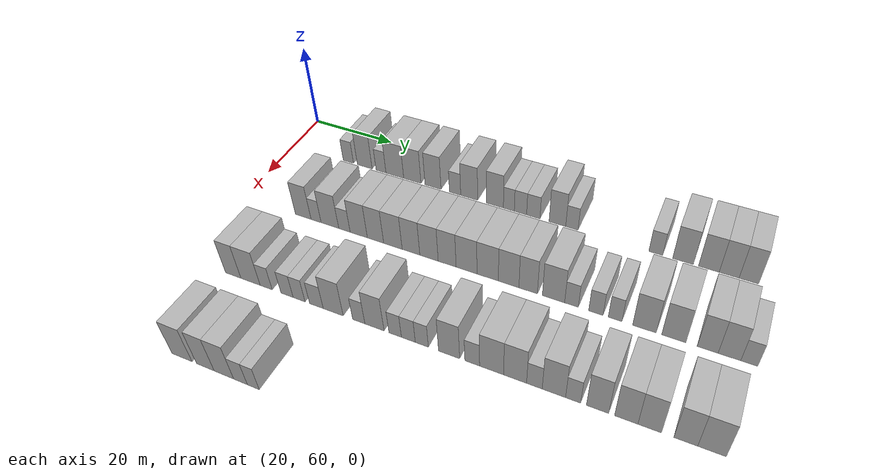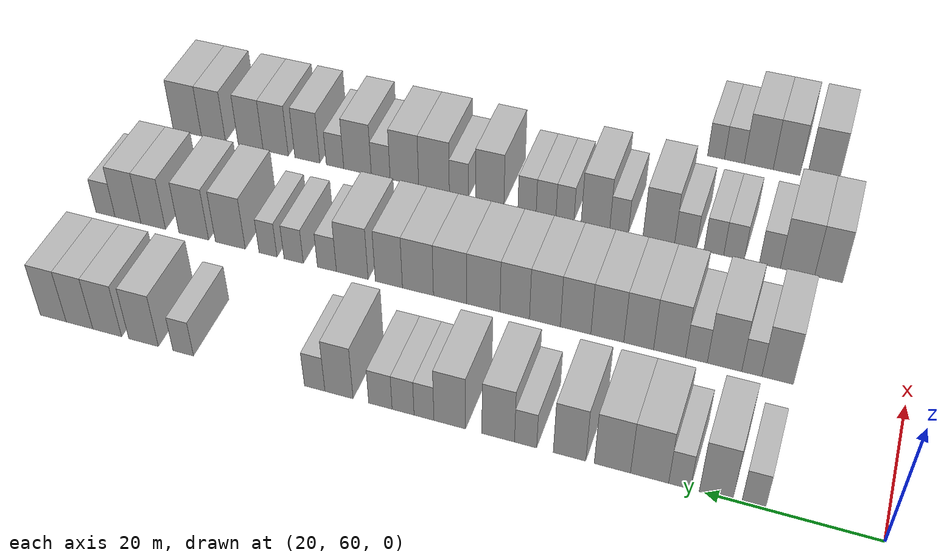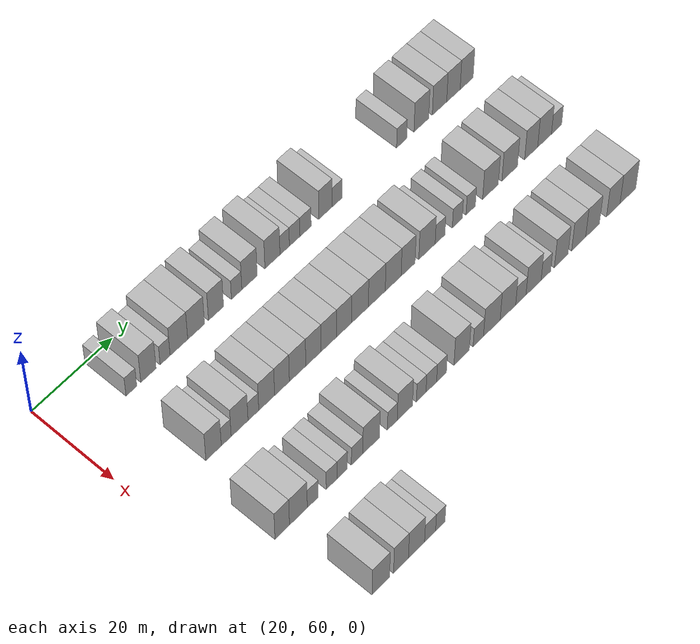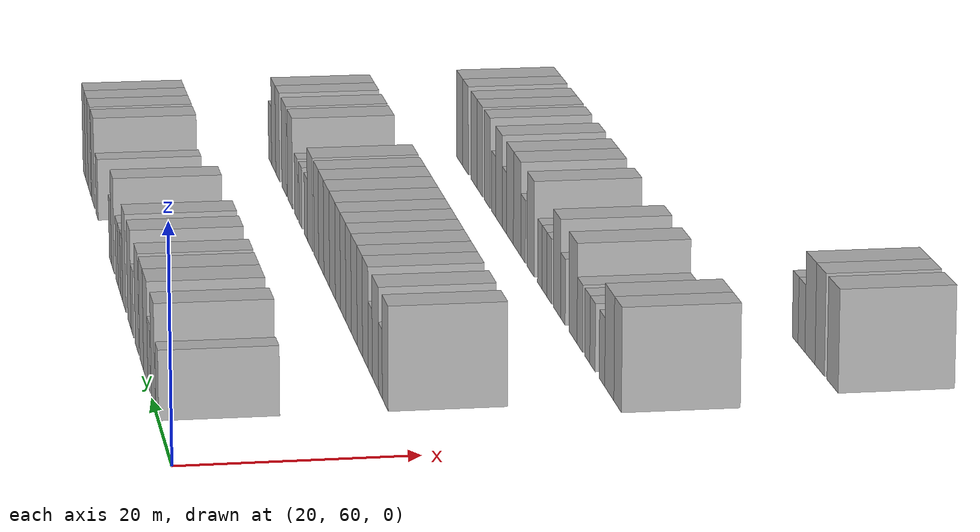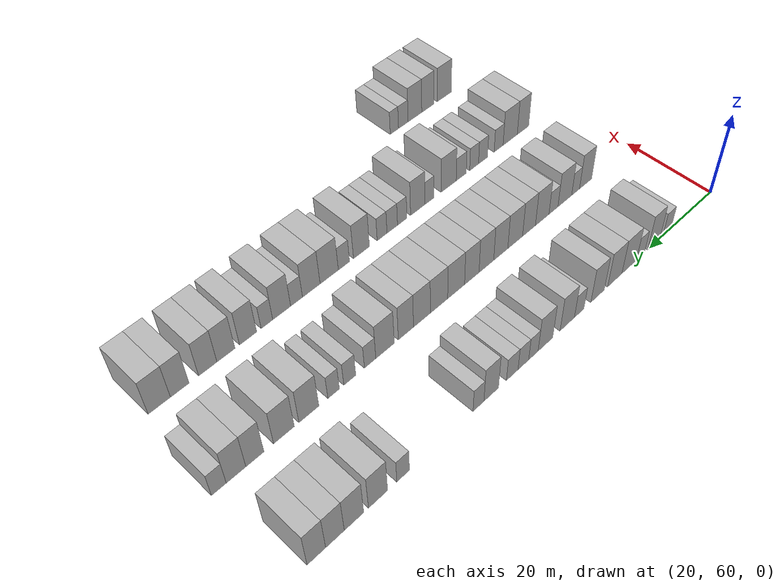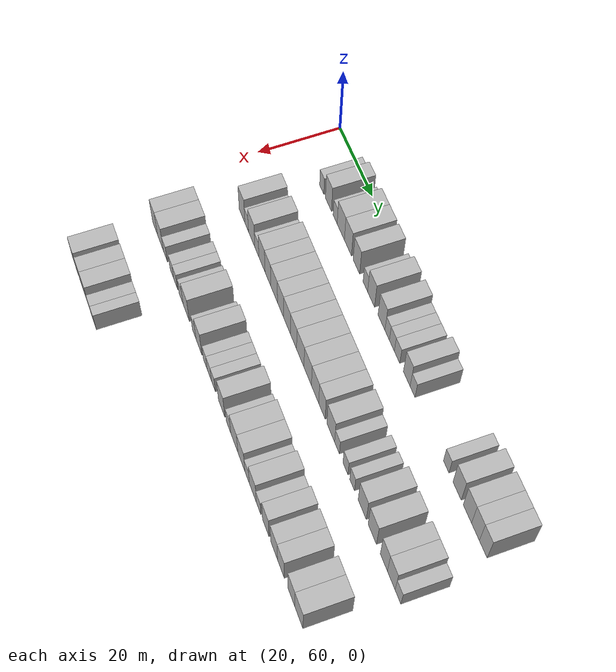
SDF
<sdf version="1.6">
 <world name="default">
  <model name="building_107">
   <static>1</static>
   <pose>25.0000 74.5199 0 0.000000 0.000000 0.000000</pose>
   <link name="link">
    <pose>0 0 3.00 0 0 0</pose>
    <collision name="collision"><geometry><box><size>10.0000 2.6778 6.0000</size></box></geometry></collision>
    <visual name="visual">
     <cast_shadows>0</cast_shadows>
     <geometry><box><size>10.0000 2.6778 6.0000</size></box></geometry>
     <material>
      <script>
       <uri>model://HANNAS_wall/materials/scripts</uri>
       <uri>model://HANNAS_wall/materials/textures</uri>
       <name>vrc/HANNAS_wall</name>
      </script>
     </material>
    </visual>
   </link>
  </model>
  <model name="building_108">
   <static>1</static>
   <pose>25.0000 78.7645 0 0.000000 0.000000 0.000000</pose>
   <link name="link">
    <pose>0 0 4.50 0 0 0</pose>
    <collision name="collision"><geometry><box><size>10.0000 3.8114 9.0000</size></box></geometry></collision>
    <visual name="visual">
     <cast_shadows>0</cast_shadows>
     <geometry><box><size>10.0000 3.8114 9.0000</size></box></geometry>
     <material>
      <script>
       <uri>model://HANNAS_wall/materials/scripts</uri>
       <uri>model://HANNAS_wall/materials/textures</uri>
       <name>vrc/HANNAS_wall</name>
      </script>
     </material>
    </visual>
   </link>
  </model>
  <model name="building_109">
   <static>1</static>
   <pose>25.0000 82.9263 0 0.000000 0.000000 0.000000</pose>
   <link name="link">
    <pose>0 0 3.00 0 0 0</pose>
    <collision name="collision"><geometry><box><size>10.0000 2.5121 6.0000</size></box></geometry></collision>
    <visual name="visual">
     <cast_shadows>0</cast_shadows>
     <geometry><box><size>10.0000 2.5121 6.0000</size></box></geometry>
     <material>
      <script>
       <uri>model://HANNAS_wall/materials/scripts</uri>
       <uri>model://HANNAS_wall/materials/textures</uri>
       <name>vrc/HANNAS_wall</name>
      </script>
     </material>
    </visual>
   </link>
  </model>
  <model name="building_110">
   <static>1</static>
   <pose>25.0000 86.4026 0 0.000000 0.000000 0.000000</pose>
   <link name="link">
    <pose>0 0 4.50 0 0 0</pose>
    <collision name="collision"><geometry><box><size>10.0000 4.4404 9.0000</size></box></geometry></collision>
    <visual name="visual">
     <cast_shadows>0</cast_shadows>
     <geometry><box><size>10.0000 4.4404 9.0000</size></box></geometry>
     <material>
      <script>
       <uri>model://HANNAS_wall/materials/scripts</uri>
       <uri>model://HANNAS_wall/materials/textures</uri>
       <name>vrc/HANNAS_wall</name>
      </script>
     </material>
    </visual>
   </link>
  </model>
  <model name="building_111">
   <static>1</static>
   <pose>25.0000 90.7559 0 0.000000 0.000000 0.000000</pose>
   <link name="link">
    <pose>0 0 4.50 0 0 0</pose>
    <collision name="collision"><geometry><box><size>10.0000 4.2663 9.0000</size></box></geometry></collision>
    <visual name="visual">
     <cast_shadows>0</cast_shadows>
     <geometry><box><size>10.0000 4.2663 9.0000</size></box></geometry>
     <material>
      <script>
       <uri>model://HANNAS_wall/materials/scripts</uri>
       <uri>model://HANNAS_wall/materials/textures</uri>
       <name>vrc/HANNAS_wall</name>
      </script>
     </material>
    </visual>
   </link>
  </model>
  <model name="building_112">
   <static>1</static>
   <pose>25.0000 95.8309 0 0.000000 0.000000 0.000000</pose>
   <link name="link">
    <pose>0 0 4.50 0 0 0</pose>
    <collision name="collision"><geometry><box><size>10.0000 3.8835 9.0000</size></box></geometry></collision>
    <visual name="visual">
     <cast_shadows>0</cast_shadows>
     <geometry><box><size>10.0000 3.8835 9.0000</size></box></geometry>
     <material>
      <script>
       <uri>model://HANNAS_wall/materials/scripts</uri>
       <uri>model://HANNAS_wall/materials/textures</uri>
       <name>vrc/HANNAS_wall</name>
      </script>
     </material>
    </visual>
   </link>
  </model>
  <model name="building_113">
   <static>1</static>
   <pose>25.0000 101.1146 0 0.000000 0.000000 0.000000</pose>
   <link name="link">
    <pose>0 0 3.00 0 0 0</pose>
    <collision name="collision"><geometry><box><size>10.0000 2.6839 6.0000</size></box></geometry></collision>
    <visual name="visual">
     <cast_shadows>0</cast_shadows>
     <geometry><box><size>10.0000 2.6839 6.0000</size></box></geometry>
     <material>
      <script>
       <uri>model://HANNAS_wall/materials/scripts</uri>
       <uri>model://HANNAS_wall/materials/textures</uri>
       <name>vrc/HANNAS_wall</name>
      </script>
     </material>
    </visual>
   </link>
  </model>
  <model name="building_114">
   <static>1</static>
   <pose>25.0000 104.4539 0 0.000000 0.000000 0.000000</pose>
   <link name="link">
    <pose>0 0 4.50 0 0 0</pose>
    <collision name="collision"><geometry><box><size>10.0000 3.9947 9.0000</size></box></geometry></collision>
    <visual name="visual">
     <cast_shadows>0</cast_shadows>
     <geometry><box><size>10.0000 3.9947 9.0000</size></box></geometry>
     <material>
      <script>
       <uri>model://HANNAS_wall/materials/scripts</uri>
       <uri>model://HANNAS_wall/materials/textures</uri>
       <name>vrc/HANNAS_wall</name>
      </script>
     </material>
    </visual>
   </link>
  </model>
  <model name="building_115">
   <static>1</static>
   <pose>25.0000 110.4219 0 0.000000 0.000000 0.000000</pose>
   <link name="link">
    <pose>0 0 4.50 0 0 0</pose>
    <collision name="collision"><geometry><box><size>10.0000 3.9413 9.0000</size></box></geometry></collision>
    <visual name="visual">
     <cast_shadows>0</cast_shadows>
     <geometry><box><size>10.0000 3.9413 9.0000</size></box></geometry>
     <material>
      <script>
       <uri>model://HANNAS_wall/materials/scripts</uri>
       <uri>model://HANNAS_wall/materials/textures</uri>
       <name>vrc/HANNAS_wall</name>
      </script>
     </material>
    </visual>
   </link>
  </model>
  <model name="building_116">
   <static>1</static>
   <pose>25.0000 113.6374 0 0.000000 0.000000 0.000000</pose>
   <link name="link">
    <pose>0 0 3.00 0 0 0</pose>
    <collision name="collision"><geometry><box><size>10.0000 2.4896 6.0000</size></box></geometry></collision>
    <visual name="visual">
     <cast_shadows>0</cast_shadows>
     <geometry><box><size>10.0000 2.4896 6.0000</size></box></geometry>
     <material>
      <script>
       <uri>model://HANNAS_wall/materials/scripts</uri>
       <uri>model://HANNAS_wall/materials/textures</uri>
       <name>vrc/HANNAS_wall</name>
      </script>
     </material>
    </visual>
   </link>
  </model>
  <model name="building_117">
   <static>1</static>
   <pose>25.0000 116.2682 0 0.000000 0.000000 0.000000</pose>
   <link name="link">
    <pose>0 0 3.00 0 0 0</pose>
    <collision name="collision"><geometry><box><size>10.0000 2.7721 6.0000</size></box></geometry></collision>
    <visual name="visual">
     <cast_shadows>0</cast_shadows>
     <geometry><box><size>10.0000 2.7721 6.0000</size></box></geometry>
     <material>
      <script>
       <uri>model://HANNAS_wall/materials/scripts</uri>
       <uri>model://HANNAS_wall/materials/textures</uri>
       <name>vrc/HANNAS_wall</name>
      </script>
     </material>
    </visual>
   </link>
  </model>
  <model name="building_118">
   <static>1</static>
   <pose>25.0000 119.1436 0 0.000000 0.000000 0.000000</pose>
   <link name="link">
    <pose>0 0 3.00 0 0 0</pose>
    <collision name="collision"><geometry><box><size>10.0000 2.9788 6.0000</size></box></geometry></collision>
    <visual name="visual">
     <cast_shadows>0</cast_shadows>
     <geometry><box><size>10.0000 2.9788 6.0000</size></box></geometry>
     <material>
      <script>
       <uri>model://HANNAS_wall/materials/scripts</uri>
       <uri>model://HANNAS_wall/materials/textures</uri>
       <name>vrc/HANNAS_wall</name>
      </script>
     </material>
    </visual>
   </link>
  </model>
  <model name="building_119">
   <static>1</static>
   <pose>25.0000 124.4514 0 0.000000 0.000000 0.000000</pose>
   <link name="link">
    <pose>0 0 4.50 0 0 0</pose>
    <collision name="collision"><geometry><box><size>10.0000 3.6368 9.0000</size></box></geometry></collision>
    <visual name="visual">
     <cast_shadows>0</cast_shadows>
     <geometry><box><size>10.0000 3.6368 9.0000</size></box></geometry>
     <material>
      <script>
       <uri>model://HANNAS_wall/materials/scripts</uri>
       <uri>model://HANNAS_wall/materials/textures</uri>
       <name>vrc/HANNAS_wall</name>
      </script>
     </material>
    </visual>
   </link>
  </model>
  <model name="building_120">
   <static>1</static>
   <pose>25.0000 127.6009 0 0.000000 0.000000 0.000000</pose>
   <link name="link">
    <pose>0 0 3.00 0 0 0</pose>
    <collision name="collision"><geometry><box><size>10.0000 2.6622 6.0000</size></box></geometry></collision>
    <visual name="visual">
     <cast_shadows>0</cast_shadows>
     <geometry><box><size>10.0000 2.6622 6.0000</size></box></geometry>
     <material>
      <script>
       <uri>model://HANNAS_wall/materials/scripts</uri>
       <uri>model://HANNAS_wall/materials/textures</uri>
       <name>vrc/HANNAS_wall</name>
      </script>
     </material>
    </visual>
   </link>
  </model>
  <model name="building_121">
   <static>1</static>
   <pose>25.0000 145.1312 0 0.000000 0.000000 0.000000</pose>
   <link name="link">
    <pose>0 0 3.00 0 0 0</pose>
    <collision name="collision"><geometry><box><size>10.0000 2.7995 6.0000</size></box></geometry></collision>
    <visual name="visual">
     <cast_shadows>0</cast_shadows>
     <geometry><box><size>10.0000 2.7995 6.0000</size></box></geometry>
     <material>
      <script>
       <uri>model://HANNAS_wall/materials/scripts</uri>
       <uri>model://HANNAS_wall/materials/textures</uri>
       <name>vrc/HANNAS_wall</name>
      </script>
     </material>
    </visual>
   </link>
  </model>
  <model name="building_122">
   <static>1</static>
   <pose>25.0000 150.5776 0 0.000000 0.000000 0.000000</pose>
   <link name="link">
    <pose>0 0 4.50 0 0 0</pose>
    <collision name="collision"><geometry><box><size>10.0000 4.0933 9.0000</size></box></geometry></collision>
    <visual name="visual">
     <cast_shadows>0</cast_shadows>
     <geometry><box><size>10.0000 4.0933 9.0000</size></box></geometry>
     <material>
      <script>
       <uri>model://HANNAS_wall/materials/scripts</uri>
       <uri>model://HANNAS_wall/materials/textures</uri>
       <name>vrc/HANNAS_wall</name>
      </script>
     </material>
    </visual>
   </link>
  </model>
  <model name="building_123">
   <static>1</static>
   <pose>25.0000 155.6396 0 0.000000 0.000000 0.000000</pose>
   <link name="link">
    <pose>0 0 4.50 0 0 0</pose>
    <collision name="collision"><geometry><box><size>10.0000 4.0307 9.0000</size></box></geometry></collision>
    <visual name="visual">
     <cast_shadows>0</cast_shadows>
     <geometry><box><size>10.0000 4.0307 9.0000</size></box></geometry>
     <material>
      <script>
       <uri>model://HANNAS_wall/materials/scripts</uri>
       <uri>model://HANNAS_wall/materials/textures</uri>
       <name>vrc/HANNAS_wall</name>
      </script>
     </material>
    </visual>
   </link>
  </model>
  <model name="building_124">
   <static>1</static>
   <pose>25.0000 159.5429 0 0.000000 0.000000 0.000000</pose>
   <link name="link">
    <pose>0 0 4.50 0 0 0</pose>
    <collision name="collision"><geometry><box><size>10.0000 3.7759 9.0000</size></box></geometry></collision>
    <visual name="visual">
     <cast_shadows>0</cast_shadows>
     <geometry><box><size>10.0000 3.7759 9.0000</size></box></geometry>
     <material>
      <script>
       <uri>model://HANNAS_wall/materials/scripts</uri>
       <uri>model://HANNAS_wall/materials/textures</uri>
       <name>vrc/HANNAS_wall</name>
      </script>
     </material>
    </visual>
   </link>
  </model>
  <model name="building_125">
   <static>1</static>
   <pose>25.0000 163.2745 0 0.000000 0.000000 0.000000</pose>
   <link name="link">
    <pose>0 0 4.50 0 0 0</pose>
    <collision name="collision"><geometry><box><size>10.0000 3.6872 9.0000</size></box></geometry></collision>
    <visual name="visual">
     <cast_shadows>0</cast_shadows>
     <geometry><box><size>10.0000 3.6872 9.0000</size></box></geometry>
     <material>
      <script>
       <uri>model://HANNAS_wall/materials/scripts</uri>
       <uri>model://HANNAS_wall/materials/textures</uri>
       <name>vrc/HANNAS_wall</name>
      </script>
     </material>
    </visual>
   </link>
  </model>
  <model name="building_272">
   <static>1</static>
   <pose>44.0000 75.1054 0 0.000000 0.000000 0.000000</pose>
   <link name="link">
    <pose>0 0 4.50 0 0 0</pose>
    <collision name="collision"><geometry><box><size>10.0000 3.8410 9.0000</size></box></geometry></collision>
    <visual name="visual">
     <cast_shadows>0</cast_shadows>
     <geometry><box><size>10.0000 3.8410 9.0000</size></box></geometry>
     <material>
      <script>
       <uri>model://HANNAS_wall/materials/scripts</uri>
       <uri>model://HANNAS_wall/materials/textures</uri>
       <name>vrc/HANNAS_wall</name>
      </script>
     </material>
    </visual>
   </link>
  </model>
  <model name="building_273">
   <static>1</static>
   <pose>44.0000 78.2526 0 0.000000 0.000000 0.000000</pose>
   <link name="link">
    <pose>0 0 3.00 0 0 0</pose>
    <collision name="collision"><geometry><box><size>10.0000 2.4534 6.0000</size></box></geometry></collision>
    <visual name="visual">
     <cast_shadows>0</cast_shadows>
     <geometry><box><size>10.0000 2.4534 6.0000</size></box></geometry>
     <material>
      <script>
       <uri>model://HANNAS_wall/materials/scripts</uri>
       <uri>model://HANNAS_wall/materials/textures</uri>
       <name>vrc/HANNAS_wall</name>
      </script>
     </material>
    </visual>
   </link>
  </model>
  <model name="building_274">
   <static>1</static>
   <pose>44.0000 81.5974 0 0.000000 0.000000 0.000000</pose>
   <link name="link">
    <pose>0 0 4.50 0 0 0</pose>
    <collision name="collision"><geometry><box><size>10.0000 4.2361 9.0000</size></box></geometry></collision>
    <visual name="visual">
     <cast_shadows>0</cast_shadows>
     <geometry><box><size>10.0000 4.2361 9.0000</size></box></geometry>
     <material>
      <script>
       <uri>model://HANNAS_wall/materials/scripts</uri>
       <uri>model://HANNAS_wall/materials/textures</uri>
       <name>vrc/HANNAS_wall</name>
      </script>
     </material>
    </visual>
   </link>
  </model>
  <model name="building_275">
   <static>1</static>
   <pose>44.0000 85.0701 0 0.000000 0.000000 0.000000</pose>
   <link name="link">
    <pose>0 0 3.00 0 0 0</pose>
    <collision name="collision"><geometry><box><size>10.0000 2.7095 6.0000</size></box></geometry></collision>
    <visual name="visual">
     <cast_shadows>0</cast_shadows>
     <geometry><box><size>10.0000 2.7095 6.0000</size></box></geometry>
     <material>
      <script>
       <uri>model://HANNAS_wall/materials/scripts</uri>
       <uri>model://HANNAS_wall/materials/textures</uri>
       <name>vrc/HANNAS_wall</name>
      </script>
     </material>
    </visual>
   </link>
  </model>
  <model name="building_276">
   <static>1</static>
   <pose>44.0000 88.4335 0 0.000000 0.000000 0.000000</pose>
   <link name="link">
    <pose>0 0 4.50 0 0 0</pose>
    <collision name="collision"><geometry><box><size>10.0000 4.0171 9.0000</size></box></geometry></collision>
    <visual name="visual">
     <cast_shadows>0</cast_shadows>
     <geometry><box><size>10.0000 4.0171 9.0000</size></box></geometry>
     <material>
      <script>
       <uri>model://HANNAS_wall/materials/scripts</uri>
       <uri>model://HANNAS_wall/materials/textures</uri>
       <name>vrc/HANNAS_wall</name>
      </script>
     </material>
    </visual>
   </link>
  </model>
  <model name="building_277">
   <static>1</static>
   <pose>44.0000 92.3285 0 0.000000 0.000000 0.000000</pose>
   <link name="link">
    <pose>0 0 4.50 0 0 0</pose>
    <collision name="collision"><geometry><box><size>10.0000 3.7730 9.0000</size></box></geometry></collision>
    <visual name="visual">
     <cast_shadows>0</cast_shadows>
     <geometry><box><size>10.0000 3.7730 9.0000</size></box></geometry>
     <material>
      <script>
       <uri>model://HANNAS_wall/materials/scripts</uri>
       <uri>model://HANNAS_wall/materials/textures</uri>
       <name>vrc/HANNAS_wall</name>
      </script>
     </material>
    </visual>
   </link>
  </model>
  <model name="building_278">
   <static>1</static>
   <pose>44.0000 96.3219 0 0.000000 0.000000 0.000000</pose>
   <link name="link">
    <pose>0 0 4.50 0 0 0</pose>
    <collision name="collision"><geometry><box><size>10.0000 4.2138 9.0000</size></box></geometry></collision>
    <visual name="visual">
     <cast_shadows>0</cast_shadows>
     <geometry><box><size>10.0000 4.2138 9.0000</size></box></geometry>
     <material>
      <script>
       <uri>model://HANNAS_wall/materials/scripts</uri>
       <uri>model://HANNAS_wall/materials/textures</uri>
       <name>vrc/HANNAS_wall</name>
      </script>
     </material>
    </visual>
   </link>
  </model>
  <model name="building_279">
   <static>1</static>
   <pose>44.0000 100.4044 0 0.000000 0.000000 0.000000</pose>
   <link name="link">
    <pose>0 0 4.50 0 0 0</pose>
    <collision name="collision"><geometry><box><size>10.0000 3.9511 9.0000</size></box></geometry></collision>
    <visual name="visual">
     <cast_shadows>0</cast_shadows>
     <geometry><box><size>10.0000 3.9511 9.0000</size></box></geometry>
     <material>
      <script>
       <uri>model://HANNAS_wall/materials/scripts</uri>
       <uri>model://HANNAS_wall/materials/textures</uri>
       <name>vrc/HANNAS_wall</name>
      </script>
     </material>
    </visual>
   </link>
  </model>
  <model name="building_280">
   <static>1</static>
   <pose>44.0000 104.4005 0 0.000000 0.000000 0.000000</pose>
   <link name="link">
    <pose>0 0 4.50 0 0 0</pose>
    <collision name="collision"><geometry><box><size>10.0000 4.0412 9.0000</size></box></geometry></collision>
    <visual name="visual">
     <cast_shadows>0</cast_shadows>
     <geometry><box><size>10.0000 4.0412 9.0000</size></box></geometry>
     <material>
      <script>
       <uri>model://HANNAS_wall/materials/scripts</uri>
       <uri>model://HANNAS_wall/materials/textures</uri>
       <name>vrc/HANNAS_wall</name>
      </script>
     </material>
    </visual>
   </link>
  </model>
  <model name="building_281">
   <static>1</static>
   <pose>44.0000 108.3671 0 0.000000 0.000000 0.000000</pose>
   <link name="link">
    <pose>0 0 4.50 0 0 0</pose>
    <collision name="collision"><geometry><box><size>10.0000 3.8921 9.0000</size></box></geometry></collision>
    <visual name="visual">
     <cast_shadows>0</cast_shadows>
     <geometry><box><size>10.0000 3.8921 9.0000</size></box></geometry>
     <material>
      <script>
       <uri>model://HANNAS_wall/materials/scripts</uri>
       <uri>model://HANNAS_wall/materials/textures</uri>
       <name>vrc/HANNAS_wall</name>
      </script>
     </material>
    </visual>
   </link>
  </model>
  <model name="building_282">
   <static>1</static>
   <pose>44.0000 112.5435 0 0.000000 0.000000 0.000000</pose>
   <link name="link">
    <pose>0 0 4.50 0 0 0</pose>
    <collision name="collision"><geometry><box><size>10.0000 4.4606 9.0000</size></box></geometry></collision>
    <visual name="visual">
     <cast_shadows>0</cast_shadows>
     <geometry><box><size>10.0000 4.4606 9.0000</size></box></geometry>
     <material>
      <script>
       <uri>model://HANNAS_wall/materials/scripts</uri>
       <uri>model://HANNAS_wall/materials/textures</uri>
       <name>vrc/HANNAS_wall</name>
      </script>
     </material>
    </visual>
   </link>
  </model>
  <model name="building_283">
   <static>1</static>
   <pose>44.0000 117.0079 0 0.000000 0.000000 0.000000</pose>
   <link name="link">
    <pose>0 0 4.50 0 0 0</pose>
    <collision name="collision"><geometry><box><size>10.0000 4.4683 9.0000</size></box></geometry></collision>
    <visual name="visual">
     <cast_shadows>0</cast_shadows>
     <geometry><box><size>10.0000 4.4683 9.0000</size></box></geometry>
     <material>
      <script>
       <uri>model://HANNAS_wall/materials/scripts</uri>
       <uri>model://HANNAS_wall/materials/textures</uri>
       <name>vrc/HANNAS_wall</name>
      </script>
     </material>
    </visual>
   </link>
  </model>
  <model name="building_284">
   <static>1</static>
   <pose>44.0000 121.3583 0 0.000000 0.000000 0.000000</pose>
   <link name="link">
    <pose>0 0 4.50 0 0 0</pose>
    <collision name="collision"><geometry><box><size>10.0000 4.2327 9.0000</size></box></geometry></collision>
    <visual name="visual">
     <cast_shadows>0</cast_shadows>
     <geometry><box><size>10.0000 4.2327 9.0000</size></box></geometry>
     <material>
      <script>
       <uri>model://HANNAS_wall/materials/scripts</uri>
       <uri>model://HANNAS_wall/materials/textures</uri>
       <name>vrc/HANNAS_wall</name>
      </script>
     </material>
    </visual>
   </link>
  </model>
  <model name="building_285">
   <static>1</static>
   <pose>44.0000 125.3445 0 0.000000 0.000000 0.000000</pose>
   <link name="link">
    <pose>0 0 4.50 0 0 0</pose>
    <collision name="collision"><geometry><box><size>10.0000 3.7396 9.0000</size></box></geometry></collision>
    <visual name="visual">
     <cast_shadows>0</cast_shadows>
     <geometry><box><size>10.0000 3.7396 9.0000</size></box></geometry>
     <material>
      <script>
       <uri>model://HANNAS_wall/materials/scripts</uri>
       <uri>model://HANNAS_wall/materials/textures</uri>
       <name>vrc/HANNAS_wall</name>
      </script>
     </material>
    </visual>
   </link>
  </model>
  <model name="building_286">
   <static>1</static>
   <pose>44.0000 130.4233 0 0.000000 0.000000 0.000000</pose>
   <link name="link">
    <pose>0 0 4.50 0 0 0</pose>
    <collision name="collision"><geometry><box><size>10.0000 4.4179 9.0000</size></box></geometry></collision>
    <visual name="visual">
     <cast_shadows>0</cast_shadows>
     <geometry><box><size>10.0000 4.4179 9.0000</size></box></geometry>
     <material>
      <script>
       <uri>model://HANNAS_wall/materials/scripts</uri>
       <uri>model://HANNAS_wall/materials/textures</uri>
       <name>vrc/HANNAS_wall</name>
      </script>
     </material>
    </visual>
   </link>
  </model>
  <model name="building_287">
   <static>1</static>
   <pose>44.0000 133.9709 0 0.000000 0.000000 0.000000</pose>
   <link name="link">
    <pose>0 0 3.00 0 0 0</pose>
    <collision name="collision"><geometry><box><size>10.0000 2.6773 6.0000</size></box></geometry></collision>
    <visual name="visual">
     <cast_shadows>0</cast_shadows>
     <geometry><box><size>10.0000 2.6773 6.0000</size></box></geometry>
     <material>
      <script>
       <uri>model://HANNAS_wall/materials/scripts</uri>
       <uri>model://HANNAS_wall/materials/textures</uri>
       <name>vrc/HANNAS_wall</name>
      </script>
     </material>
    </visual>
   </link>
  </model>
  <model name="building_288">
   <static>1</static>
   <pose>44.0000 138.6852 0 0.000000 0.000000 0.000000</pose>
   <link name="link">
    <pose>0 0 3.00 0 0 0</pose>
    <collision name="collision"><geometry><box><size>10.0000 2.7514 6.0000</size></box></geometry></collision>
    <visual name="visual">
     <cast_shadows>0</cast_shadows>
     <geometry><box><size>10.0000 2.7514 6.0000</size></box></geometry>
     <material>
      <script>
       <uri>model://HANNAS_wall/materials/scripts</uri>
       <uri>model://HANNAS_wall/materials/textures</uri>
       <name>vrc/HANNAS_wall</name>
      </script>
     </material>
    </visual>
   </link>
  </model>
  <model name="building_289">
   <static>1</static>
   <pose>44.0000 142.3523 0 0.000000 0.000000 0.000000</pose>
   <link name="link">
    <pose>0 0 3.00 0 0 0</pose>
    <collision name="collision"><geometry><box><size>10.0000 2.5828 6.0000</size></box></geometry></collision>
    <visual name="visual">
     <cast_shadows>0</cast_shadows>
     <geometry><box><size>10.0000 2.5828 6.0000</size></box></geometry>
     <material>
      <script>
       <uri>model://HANNAS_wall/materials/scripts</uri>
       <uri>model://HANNAS_wall/materials/textures</uri>
       <name>vrc/HANNAS_wall</name>
      </script>
     </material>
    </visual>
   </link>
  </model>
  <model name="building_290">
   <static>1</static>
   <pose>44.0000 147.8173 0 0.000000 0.000000 0.000000</pose>
   <link name="link">
    <pose>0 0 4.50 0 0 0</pose>
    <collision name="collision"><geometry><box><size>10.0000 4.3472 9.0000</size></box></geometry></collision>
    <visual name="visual">
     <cast_shadows>0</cast_shadows>
     <geometry><box><size>10.0000 4.3472 9.0000</size></box></geometry>
     <material>
      <script>
       <uri>model://HANNAS_wall/materials/scripts</uri>
       <uri>model://HANNAS_wall/materials/textures</uri>
       <name>vrc/HANNAS_wall</name>
      </script>
     </material>
    </visual>
   </link>
  </model>
  <model name="building_291">
   <static>1</static>
   <pose>44.0000 153.1776 0 0.000000 0.000000 0.000000</pose>
   <link name="link">
    <pose>0 0 4.50 0 0 0</pose>
    <collision name="collision"><geometry><box><size>10.0000 4.3734 9.0000</size></box></geometry></collision>
    <visual name="visual">
     <cast_shadows>0</cast_shadows>
     <geometry><box><size>10.0000 4.3734 9.0000</size></box></geometry>
     <material>
      <script>
       <uri>model://HANNAS_wall/materials/scripts</uri>
       <uri>model://HANNAS_wall/materials/textures</uri>
       <name>vrc/HANNAS_wall</name>
      </script>
     </material>
    </visual>
   </link>
  </model>
  <model name="building_292">
   <static>1</static>
   <pose>44.0000 159.2048 0 0.000000 0.000000 0.000000</pose>
   <link name="link">
    <pose>0 0 4.50 0 0 0</pose>
    <collision name="collision"><geometry><box><size>10.0000 3.6809 9.0000</size></box></geometry></collision>
    <visual name="visual">
     <cast_shadows>0</cast_shadows>
     <geometry><box><size>10.0000 3.6809 9.0000</size></box></geometry>
     <material>
      <script>
       <uri>model://HANNAS_wall/materials/scripts</uri>
       <uri>model://HANNAS_wall/materials/textures</uri>
       <name>vrc/HANNAS_wall</name>
      </script>
     </material>
    </visual>
   </link>
  </model>
  <model name="building_293">
   <static>1</static>
   <pose>44.0000 163.0004 0 0.000000 0.000000 0.000000</pose>
   <link name="link">
    <pose>0 0 4.50 0 0 0</pose>
    <collision name="collision"><geometry><box><size>10.0000 3.9104 9.0000</size></box></geometry></collision>
    <visual name="visual">
     <cast_shadows>0</cast_shadows>
     <geometry><box><size>10.0000 3.9104 9.0000</size></box></geometry>
     <material>
      <script>
       <uri>model://HANNAS_wall/materials/scripts</uri>
       <uri>model://HANNAS_wall/materials/textures</uri>
       <name>vrc/HANNAS_wall</name>
      </script>
     </material>
    </visual>
   </link>
  </model>
  <model name="building_294">
   <static>1</static>
   <pose>44.0000 166.4081 0 0.000000 0.000000 0.000000</pose>
   <link name="link">
    <pose>0 0 3.00 0 0 0</pose>
    <collision name="collision"><geometry><box><size>10.0000 2.9050 6.0000</size></box></geometry></collision>
    <visual name="visual">
     <cast_shadows>0</cast_shadows>
     <geometry><box><size>10.0000 2.9050 6.0000</size></box></geometry>
     <material>
      <script>
       <uri>model://HANNAS_wall/materials/scripts</uri>
       <uri>model://HANNAS_wall/materials/textures</uri>
       <name>vrc/HANNAS_wall</name>
      </script>
     </material>
    </visual>
   </link>
  </model>
  <model name="building_448">
   <static>1</static>
   <pose>63.0000 71.7750 0 0.000000 0.000000 0.000000</pose>
   <link name="link">
    <pose>0 0 4.50 0 0 0</pose>
    <collision name="collision"><geometry><box><size>10.0000 3.6027 9.0000</size></box></geometry></collision>
    <visual name="visual">
     <cast_shadows>0</cast_shadows>
     <geometry><box><size>10.0000 3.6027 9.0000</size></box></geometry>
     <material>
      <script>
       <uri>model://HANNAS_wall/materials/scripts</uri>
       <uri>model://HANNAS_wall/materials/textures</uri>
       <name>vrc/HANNAS_wall</name>
      </script>
     </material>
    </visual>
   </link>
  </model>
  <model name="building_449">
   <static>1</static>
   <pose>63.0000 75.8003 0 0.000000 0.000000 0.000000</pose>
   <link name="link">
    <pose>0 0 4.50 0 0 0</pose>
    <collision name="collision"><geometry><box><size>10.0000 4.4479 9.0000</size></box></geometry></collision>
    <visual name="visual">
     <cast_shadows>0</cast_shadows>
     <geometry><box><size>10.0000 4.4479 9.0000</size></box></geometry>
     <material>
      <script>
       <uri>model://HANNAS_wall/materials/scripts</uri>
       <uri>model://HANNAS_wall/materials/textures</uri>
       <name>vrc/HANNAS_wall</name>
      </script>
     </material>
    </visual>
   </link>
  </model>
  <model name="building_450">
   <static>1</static>
   <pose>63.0000 79.4029 0 0.000000 0.000000 0.000000</pose>
   <link name="link">
    <pose>0 0 3.00 0 0 0</pose>
    <collision name="collision"><geometry><box><size>10.0000 2.7573 6.0000</size></box></geometry></collision>
    <visual name="visual">
     <cast_shadows>0</cast_shadows>
     <geometry><box><size>10.0000 2.7573 6.0000</size></box></geometry>
     <material>
      <script>
       <uri>model://HANNAS_wall/materials/scripts</uri>
       <uri>model://HANNAS_wall/materials/textures</uri>
       <name>vrc/HANNAS_wall</name>
      </script>
     </material>
    </visual>
   </link>
  </model>
  <model name="building_451">
   <static>1</static>
   <pose>63.0000 84.1377 0 0.000000 0.000000 0.000000</pose>
   <link name="link">
    <pose>0 0 3.00 0 0 0</pose>
    <collision name="collision"><geometry><box><size>10.0000 2.7123 6.0000</size></box></geometry></collision>
    <visual name="visual">
     <cast_shadows>0</cast_shadows>
     <geometry><box><size>10.0000 2.7123 6.0000</size></box></geometry>
     <material>
      <script>
       <uri>model://HANNAS_wall/materials/scripts</uri>
       <uri>model://HANNAS_wall/materials/textures</uri>
       <name>vrc/HANNAS_wall</name>
      </script>
     </material>
    </visual>
   </link>
  </model>
  <model name="building_452">
   <static>1</static>
   <pose>63.0000 86.8178 0 0.000000 0.000000 0.000000</pose>
   <link name="link">
    <pose>0 0 3.00 0 0 0</pose>
    <collision name="collision"><geometry><box><size>10.0000 2.6478 6.0000</size></box></geometry></collision>
    <visual name="visual">
     <cast_shadows>0</cast_shadows>
     <geometry><box><size>10.0000 2.6478 6.0000</size></box></geometry>
     <material>
      <script>
       <uri>model://HANNAS_wall/materials/scripts</uri>
       <uri>model://HANNAS_wall/materials/textures</uri>
       <name>vrc/HANNAS_wall</name>
      </script>
     </material>
    </visual>
   </link>
  </model>
  <model name="building_453">
   <static>1</static>
   <pose>63.0000 90.6125 0 0.000000 0.000000 0.000000</pose>
   <link name="link">
    <pose>0 0 3.00 0 0 0</pose>
    <collision name="collision"><geometry><box><size>10.0000 2.9417 6.0000</size></box></geometry></collision>
    <visual name="visual">
     <cast_shadows>0</cast_shadows>
     <geometry><box><size>10.0000 2.9417 6.0000</size></box></geometry>
     <material>
      <script>
       <uri>model://HANNAS_wall/materials/scripts</uri>
       <uri>model://HANNAS_wall/materials/textures</uri>
       <name>vrc/HANNAS_wall</name>
      </script>
     </material>
    </visual>
   </link>
  </model>
  <model name="building_454">
   <static>1</static>
   <pose>63.0000 94.2383 0 0.000000 0.000000 0.000000</pose>
   <link name="link">
    <pose>0 0 4.50 0 0 0</pose>
    <collision name="collision"><geometry><box><size>10.0000 4.3099 9.0000</size></box></geometry></collision>
    <visual name="visual">
     <cast_shadows>0</cast_shadows>
     <geometry><box><size>10.0000 4.3099 9.0000</size></box></geometry>
     <material>
      <script>
       <uri>model://HANNAS_wall/materials/scripts</uri>
       <uri>model://HANNAS_wall/materials/textures</uri>
       <name>vrc/HANNAS_wall</name>
      </script>
     </material>
    </visual>
   </link>
  </model>
  <model name="building_455">
   <static>1</static>
   <pose>63.0000 99.6733 0 0.000000 0.000000 0.000000</pose>
   <link name="link">
    <pose>0 0 3.00 0 0 0</pose>
    <collision name="collision"><geometry><box><size>10.0000 2.5602 6.0000</size></box></geometry></collision>
    <visual name="visual">
     <cast_shadows>0</cast_shadows>
     <geometry><box><size>10.0000 2.5602 6.0000</size></box></geometry>
     <material>
      <script>
       <uri>model://HANNAS_wall/materials/scripts</uri>
       <uri>model://HANNAS_wall/materials/textures</uri>
       <name>vrc/HANNAS_wall</name>
      </script>
     </material>
    </visual>
   </link>
  </model>
  <model name="building_456">
   <static>1</static>
   <pose>63.0000 102.9383 0 0.000000 0.000000 0.000000</pose>
   <link name="link">
    <pose>0 0 4.50 0 0 0</pose>
    <collision name="collision"><geometry><box><size>10.0000 3.9699 9.0000</size></box></geometry></collision>
    <visual name="visual">
     <cast_shadows>0</cast_shadows>
     <geometry><box><size>10.0000 3.9699 9.0000</size></box></geometry>
     <material>
      <script>
       <uri>model://HANNAS_wall/materials/scripts</uri>
       <uri>model://HANNAS_wall/materials/textures</uri>
       <name>vrc/HANNAS_wall</name>
      </script>
     </material>
    </visual>
   </link>
  </model>
  <model name="building_457">
   <static>1</static>
   <pose>63.0000 107.1879 0 0.000000 0.000000 0.000000</pose>
   <link name="link">
    <pose>0 0 3.00 0 0 0</pose>
    <collision name="collision"><geometry><box><size>10.0000 2.5292 6.0000</size></box></geometry></collision>
    <visual name="visual">
     <cast_shadows>0</cast_shadows>
     <geometry><box><size>10.0000 2.5292 6.0000</size></box></geometry>
     <material>
      <script>
       <uri>model://HANNAS_wall/materials/scripts</uri>
       <uri>model://HANNAS_wall/materials/textures</uri>
       <name>vrc/HANNAS_wall</name>
      </script>
     </material>
    </visual>
   </link>
  </model>
  <model name="building_458">
   <static>1</static>
   <pose>63.0000 109.8484 0 0.000000 0.000000 0.000000</pose>
   <link name="link">
    <pose>0 0 3.00 0 0 0</pose>
    <collision name="collision"><geometry><box><size>10.0000 2.7918 6.0000</size></box></geometry></collision>
    <visual name="visual">
     <cast_shadows>0</cast_shadows>
     <geometry><box><size>10.0000 2.7918 6.0000</size></box></geometry>
     <material>
      <script>
       <uri>model://HANNAS_wall/materials/scripts</uri>
       <uri>model://HANNAS_wall/materials/textures</uri>
       <name>vrc/HANNAS_wall</name>
      </script>
     </material>
    </visual>
   </link>
  </model>
  <model name="building_459">
   <static>1</static>
   <pose>63.0000 112.5373 0 0.000000 0.000000 0.000000</pose>
   <link name="link">
    <pose>0 0 3.00 0 0 0</pose>
    <collision name="collision"><geometry><box><size>10.0000 2.5862 6.0000</size></box></geometry></collision>
    <visual name="visual">
     <cast_shadows>0</cast_shadows>
     <geometry><box><size>10.0000 2.5862 6.0000</size></box></geometry>
     <material>
      <script>
       <uri>model://HANNAS_wall/materials/scripts</uri>
       <uri>model://HANNAS_wall/materials/textures</uri>
       <name>vrc/HANNAS_wall</name>
      </script>
     </material>
    </visual>
   </link>
  </model>
  <model name="building_460">
   <static>1</static>
   <pose>63.0000 117.8761 0 0.000000 0.000000 0.000000</pose>
   <link name="link">
    <pose>0 0 4.50 0 0 0</pose>
    <collision name="collision"><geometry><box><size>10.0000 4.0915 9.0000</size></box></geometry></collision>
    <visual name="visual">
     <cast_shadows>0</cast_shadows>
     <geometry><box><size>10.0000 4.0915 9.0000</size></box></geometry>
     <material>
      <script>
       <uri>model://HANNAS_wall/materials/scripts</uri>
       <uri>model://HANNAS_wall/materials/textures</uri>
       <name>vrc/HANNAS_wall</name>
      </script>
     </material>
    </visual>
   </link>
  </model>
  <model name="building_461">
   <static>1</static>
   <pose>63.0000 122.3200 0 0.000000 0.000000 0.000000</pose>
   <link name="link">
    <pose>0 0 3.00 0 0 0</pose>
    <collision name="collision"><geometry><box><size>10.0000 2.7962 6.0000</size></box></geometry></collision>
    <visual name="visual">
     <cast_shadows>0</cast_shadows>
     <geometry><box><size>10.0000 2.7962 6.0000</size></box></geometry>
     <material>
      <script>
       <uri>model://HANNAS_wall/materials/scripts</uri>
       <uri>model://HANNAS_wall/materials/textures</uri>
       <name>vrc/HANNAS_wall</name>
      </script>
     </material>
    </visual>
   </link>
  </model>
  <model name="building_462">
   <static>1</static>
   <pose>63.0000 125.9592 0 0.000000 0.000000 0.000000</pose>
   <link name="link">
    <pose>0 0 4.50 0 0 0</pose>
    <collision name="collision"><geometry><box><size>10.0000 4.4824 9.0000</size></box></geometry></collision>
    <visual name="visual">
     <cast_shadows>0</cast_shadows>
     <geometry><box><size>10.0000 4.4824 9.0000</size></box></geometry>
     <material>
      <script>
       <uri>model://HANNAS_wall/materials/scripts</uri>
       <uri>model://HANNAS_wall/materials/textures</uri>
       <name>vrc/HANNAS_wall</name>
      </script>
     </material>
    </visual>
   </link>
  </model>
  <model name="building_463">
   <static>1</static>
   <pose>63.0000 130.3122 0 0.000000 0.000000 0.000000</pose>
   <link name="link">
    <pose>0 0 4.50 0 0 0</pose>
    <collision name="collision"><geometry><box><size>10.0000 4.2236 9.0000</size></box></geometry></collision>
    <visual name="visual">
     <cast_shadows>0</cast_shadows>
     <geometry><box><size>10.0000 4.2236 9.0000</size></box></geometry>
     <material>
      <script>
       <uri>model://HANNAS_wall/materials/scripts</uri>
       <uri>model://HANNAS_wall/materials/textures</uri>
       <name>vrc/HANNAS_wall</name>
      </script>
     </material>
    </visual>
   </link>
  </model>
  <model name="building_464">
   <static>1</static>
   <pose>63.0000 133.8272 0 0.000000 0.000000 0.000000</pose>
   <link name="link">
    <pose>0 0 3.00 0 0 0</pose>
    <collision name="collision"><geometry><box><size>10.0000 2.8063 6.0000</size></box></geometry></collision>
    <visual name="visual">
     <cast_shadows>0</cast_shadows>
     <geometry><box><size>10.0000 2.8063 6.0000</size></box></geometry>
     <material>
      <script>
       <uri>model://HANNAS_wall/materials/scripts</uri>
       <uri>model://HANNAS_wall/materials/textures</uri>
       <name>vrc/HANNAS_wall</name>
      </script>
     </material>
    </visual>
   </link>
  </model>
  <model name="building_465">
   <static>1</static>
   <pose>63.0000 137.3073 0 0.000000 0.000000 0.000000</pose>
   <link name="link">
    <pose>0 0 4.50 0 0 0</pose>
    <collision name="collision"><geometry><box><size>10.0000 4.1539 9.0000</size></box></geometry></collision>
    <visual name="visual">
     <cast_shadows>0</cast_shadows>
     <geometry><box><size>10.0000 4.1539 9.0000</size></box></geometry>
     <material>
      <script>
       <uri>model://HANNAS_wall/materials/scripts</uri>
       <uri>model://HANNAS_wall/materials/textures</uri>
       <name>vrc/HANNAS_wall</name>
      </script>
     </material>
    </visual>
   </link>
  </model>
  <model name="building_466">
   <static>1</static>
   <pose>63.0000 140.7040 0 0.000000 0.000000 0.000000</pose>
   <link name="link">
    <pose>0 0 3.00 0 0 0</pose>
    <collision name="collision"><geometry><box><size>10.0000 2.6394 6.0000</size></box></geometry></collision>
    <visual name="visual">
     <cast_shadows>0</cast_shadows>
     <geometry><box><size>10.0000 2.6394 6.0000</size></box></geometry>
     <material>
      <script>
       <uri>model://HANNAS_wall/materials/scripts</uri>
       <uri>model://HANNAS_wall/materials/textures</uri>
       <name>vrc/HANNAS_wall</name>
      </script>
     </material>
    </visual>
   </link>
  </model>
  <model name="building_467">
   <static>1</static>
   <pose>63.0000 144.9320 0 0.000000 0.000000 0.000000</pose>
   <link name="link">
    <pose>0 0 4.50 0 0 0</pose>
    <collision name="collision"><geometry><box><size>10.0000 3.8165 9.0000</size></box></geometry></collision>
    <visual name="visual">
     <cast_shadows>0</cast_shadows>
     <geometry><box><size>10.0000 3.8165 9.0000</size></box></geometry>
     <material>
      <script>
       <uri>model://HANNAS_wall/materials/scripts</uri>
       <uri>model://HANNAS_wall/materials/textures</uri>
       <name>vrc/HANNAS_wall</name>
      </script>
     </material>
    </visual>
   </link>
  </model>
  <model name="building_468">
   <static>1</static>
   <pose>63.0000 149.7949 0 0.000000 0.000000 0.000000</pose>
   <link name="link">
    <pose>0 0 4.50 0 0 0</pose>
    <collision name="collision"><geometry><box><size>10.0000 3.9093 9.0000</size></box></geometry></collision>
    <visual name="visual">
     <cast_shadows>0</cast_shadows>
     <geometry><box><size>10.0000 3.9093 9.0000</size></box></geometry>
     <material>
      <script>
       <uri>model://HANNAS_wall/materials/scripts</uri>
       <uri>model://HANNAS_wall/materials/textures</uri>
       <name>vrc/HANNAS_wall</name>
      </script>
     </material>
    </visual>
   </link>
  </model>
  <model name="building_469">
   <static>1</static>
   <pose>63.0000 153.6927 0 0.000000 0.000000 0.000000</pose>
   <link name="link">
    <pose>0 0 4.50 0 0 0</pose>
    <collision name="collision"><geometry><box><size>10.0000 3.8863 9.0000</size></box></geometry></collision>
    <visual name="visual">
     <cast_shadows>0</cast_shadows>
     <geometry><box><size>10.0000 3.8863 9.0000</size></box></geometry>
     <material>
      <script>
       <uri>model://HANNAS_wall/materials/scripts</uri>
       <uri>model://HANNAS_wall/materials/textures</uri>
       <name>vrc/HANNAS_wall</name>
      </script>
     </material>
    </visual>
   </link>
  </model>
  <model name="building_470">
   <static>1</static>
   <pose>63.0000 159.5436 0 0.000000 0.000000 0.000000</pose>
   <link name="link">
    <pose>0 0 4.50 0 0 0</pose>
    <collision name="collision"><geometry><box><size>10.0000 3.8157 9.0000</size></box></geometry></collision>
    <visual name="visual">
     <cast_shadows>0</cast_shadows>
     <geometry><box><size>10.0000 3.8157 9.0000</size></box></geometry>
     <material>
      <script>
       <uri>model://HANNAS_wall/materials/scripts</uri>
       <uri>model://HANNAS_wall/materials/textures</uri>
       <name>vrc/HANNAS_wall</name>
      </script>
     </material>
    </visual>
   </link>
  </model>
  <model name="building_471">
   <static>1</static>
   <pose>63.0000 163.6958 0 0.000000 0.000000 0.000000</pose>
   <link name="link">
    <pose>0 0 4.50 0 0 0</pose>
    <collision name="collision"><geometry><box><size>10.0000 4.4886 9.0000</size></box></geometry></collision>
    <visual name="visual">
     <cast_shadows>0</cast_shadows>
     <geometry><box><size>10.0000 4.4886 9.0000</size></box></geometry>
     <material>
      <script>
       <uri>model://HANNAS_wall/materials/scripts</uri>
       <uri>model://HANNAS_wall/materials/textures</uri>
       <name>vrc/HANNAS_wall</name>
      </script>
     </material>
    </visual>
   </link>
  </model>
  <model name="building_632">
   <static>1</static>
   <pose>82.0000 75.3583 0 0.000000 0.000000 0.000000</pose>
   <link name="link">
    <pose>0 0 4.50 0 0 0</pose>
    <collision name="collision"><geometry><box><size>10.0000 4.3647 9.0000</size></box></geometry></collision>
    <visual name="visual">
     <cast_shadows>0</cast_shadows>
     <geometry><box><size>10.0000 4.3647 9.0000</size></box></geometry>
     <material>
      <script>
       <uri>model://HANNAS_wall/materials/scripts</uri>
       <uri>model://HANNAS_wall/materials/textures</uri>
       <name>vrc/HANNAS_wall</name>
      </script>
     </material>
    </visual>
   </link>
  </model>
  <model name="building_633">
   <static>1</static>
   <pose>82.0000 80.4125 0 0.000000 0.000000 0.000000</pose>
   <link name="link">
    <pose>0 0 4.50 0 0 0</pose>
    <collision name="collision"><geometry><box><size>10.0000 3.7439 9.0000</size></box></geometry></collision>
    <visual name="visual">
     <cast_shadows>0</cast_shadows>
     <geometry><box><size>10.0000 3.7439 9.0000</size></box></geometry>
     <material>
      <script>
       <uri>model://HANNAS_wall/materials/scripts</uri>
       <uri>model://HANNAS_wall/materials/textures</uri>
       <name>vrc/HANNAS_wall</name>
      </script>
     </material>
    </visual>
   </link>
  </model>
  <model name="building_634">
   <static>1</static>
   <pose>82.0000 84.3287 0 0.000000 0.000000 0.000000</pose>
   <link name="link">
    <pose>0 0 4.50 0 0 0</pose>
    <collision name="collision"><geometry><box><size>10.0000 4.0885 9.0000</size></box></geometry></collision>
    <visual name="visual">
     <cast_shadows>0</cast_shadows>
     <geometry><box><size>10.0000 4.0885 9.0000</size></box></geometry>
     <material>
      <script>
       <uri>model://HANNAS_wall/materials/scripts</uri>
       <uri>model://HANNAS_wall/materials/textures</uri>
       <name>vrc/HANNAS_wall</name>
      </script>
     </material>
    </visual>
   </link>
  </model>
  <model name="building_635">
   <static>1</static>
   <pose>82.0000 87.7820 0 0.000000 0.000000 0.000000</pose>
   <link name="link">
    <pose>0 0 3.00 0 0 0</pose>
    <collision name="collision"><geometry><box><size>10.0000 2.8181 6.0000</size></box></geometry></collision>
    <visual name="visual">
     <cast_shadows>0</cast_shadows>
     <geometry><box><size>10.0000 2.8181 6.0000</size></box></geometry>
     <material>
      <script>
       <uri>model://HANNAS_wall/materials/scripts</uri>
       <uri>model://HANNAS_wall/materials/textures</uri>
       <name>vrc/HANNAS_wall</name>
      </script>
     </material>
    </visual>
   </link>
  </model>
  <model name="building_636">
   <static>1</static>
   <pose>82.0000 90.4008 0 0.000000 0.000000 0.000000</pose>
   <link name="link">
    <pose>0 0 3.00 0 0 0</pose>
    <collision name="collision"><geometry><box><size>10.0000 2.4195 6.0000</size></box></geometry></collision>
    <visual name="visual">
     <cast_shadows>0</cast_shadows>
     <geometry><box><size>10.0000 2.4195 6.0000</size></box></geometry>
     <material>
      <script>
       <uri>model://HANNAS_wall/materials/scripts</uri>
       <uri>model://HANNAS_wall/materials/textures</uri>
       <name>vrc/HANNAS_wall</name>
      </script>
     </material>
    </visual>
   </link>
  </model>
 </world>
</sdf>
